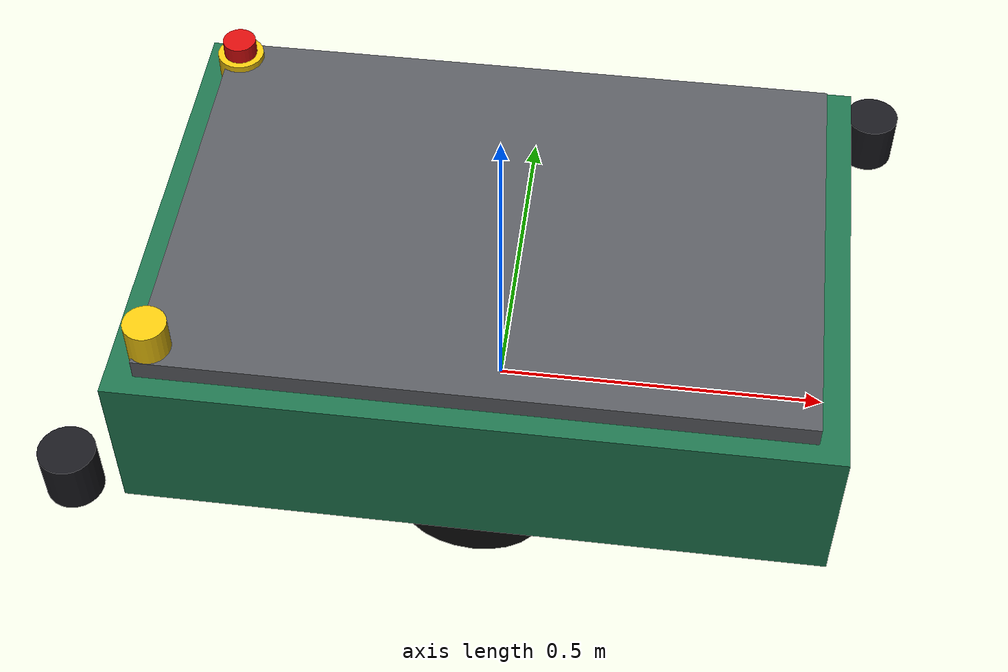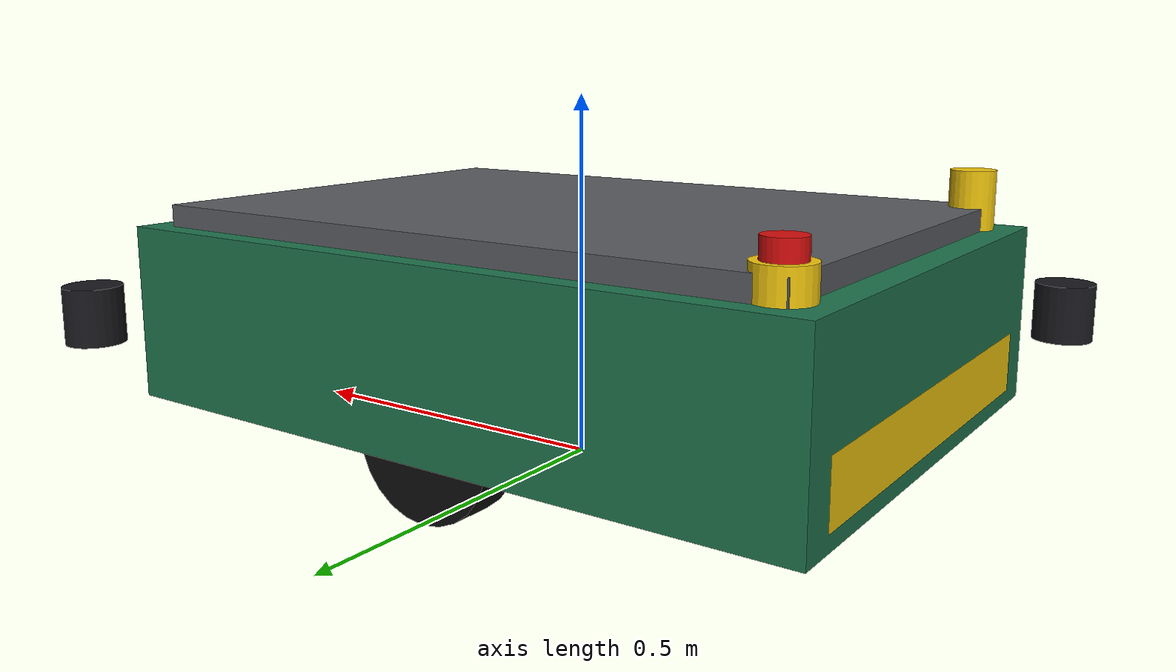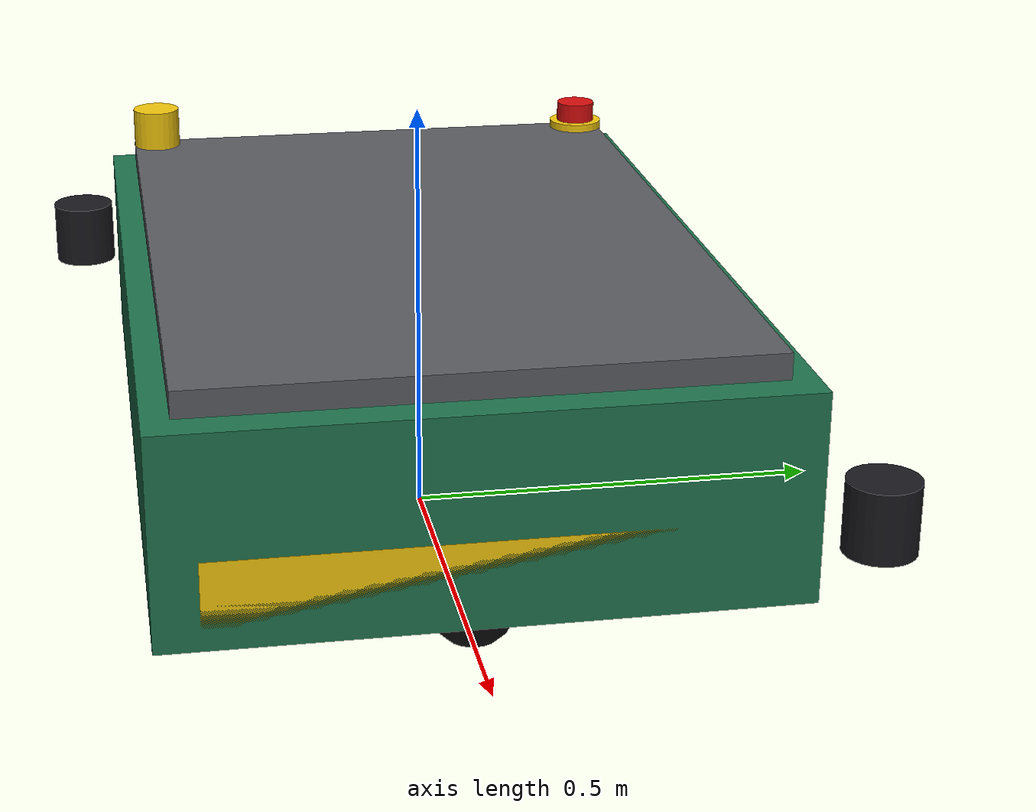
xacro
<?xml version="1.0"?>
<robot xmlns:xacro="http://www.ros.org/wiki/xacro" name="uco_amr">
  <xacro:arg name="camera" default="false"/>
  <xacro:arg name="agv_ns" default="agv"/>
  <xacro:property name="ns" value="$(arg agv_ns)"/>

  <!-- ===================== dimensions (m, kg) ===================== -->
  <xacro:property name="L" value="1.0"/>          <!-- chassis length -->
  <xacro:property name="W" value="0.7"/>          <!-- chassis width -->
  <xacro:property name="chassis_bottom" value="0.08"/>
  <xacro:property name="chassis_top" value="0.32"/>
  <xacro:property name="deck_h" value="0.03"/>    <!-- deck top = 0.35 above ground -->
  <xacro:property name="wheel_r" value="0.10"/>
  <xacro:property name="wheel_w" value="0.06"/>
  <xacro:property name="wheel_sep" value="0.60"/>
  <xacro:property name="caster_r" value="0.05"/>
  <xacro:property name="caster_x" value="0.38"/>
  <xacro:property name="chassis_mass" value="140.0"/>
  <xacro:property name="wheel_mass" value="5.0"/>
  <xacro:property name="lidar_z" value="0.20"/>   <!-- scan plane height above ground -->
  <xacro:property name="lidar_half_fov" value="${radians(132)}"/>

  <xacro:macro name="box_inertia" params="m x y z">
    <inertial><mass value="${m}"/>
      <inertia ixx="${m*(y*y+z*z)/12}" iyy="${m*(x*x+z*z)/12}" izz="${m*(x*x+y*y)/12}" ixy="0" ixz="0" iyz="0"/>
    </inertial>
  </xacro:macro>

  <material name="body_green"><color rgba="0.12 0.45 0.30 1"/></material>
  <material name="deck_grey"><color rgba="0.35 0.36 0.38 1"/></material>
  <material name="black"><color rgba="0.05 0.05 0.05 1"/></material>
  <material name="yellow"><color rgba="0.95 0.78 0.05 1"/></material>
  <material name="red"><color rgba="0.85 0.05 0.05 1"/></material>
  <material name="lidar_black"><color rgba="0.1 0.1 0.12 1"/></material>

  <!-- ===================== chassis ===================== -->
  <link name="base_footprint"/>

  <link name="base_link">
    <visual name="chassis">
      <origin xyz="0 0 ${(chassis_bottom+chassis_top)/2 - wheel_r}"/>
      <geometry><box size="${L} ${W} ${chassis_top-chassis_bottom}"/></geometry>
      <material name="body_green"/>
    </visual>
    <visual name="bumper_front">
      <origin xyz="${L/2 - 0.025} 0 ${chassis_bottom + 0.06 - wheel_r}"/>  <!-- flush, no self-hits -->
      <geometry><box size="0.05 ${W - 0.1} 0.08"/></geometry>
      <material name="yellow"/>
    </visual>
    <visual name="bumper_rear">
      <origin xyz="${-L/2 + 0.025} 0 ${chassis_bottom + 0.06 - wheel_r}"/>
      <geometry><box size="0.05 ${W - 0.1} 0.08"/></geometry>
      <material name="yellow"/>
    </visual>
    <collision>
      <origin xyz="0 0 ${(chassis_bottom+chassis_top)/2 - wheel_r}"/>
      <geometry><box size="${L} ${W} ${chassis_top-chassis_bottom}"/></geometry>
    </collision>
    <xacro:box_inertia m="${chassis_mass}" x="${L}" y="${W}" z="${chassis_top-chassis_bottom}"/>
  </link>
  <joint name="base_footprint_joint" type="fixed">
    <parent link="base_footprint"/><child link="base_link"/>
    <origin xyz="0 0 ${wheel_r}"/>
  </joint>

  <!-- lift deck (payload surface) -->
  <link name="deck_link">
    <visual name="deck">
      <origin xyz="0 0 ${-deck_h/2}"/>
      <geometry><box size="${L - 0.08} ${W - 0.06} ${deck_h}"/></geometry>
      <material name="deck_grey"/>
    </visual>
    <collision>
      <origin xyz="0 0 ${-deck_h/2}"/>
      <geometry><box size="${L - 0.08} ${W - 0.06} ${deck_h}"/></geometry>
    </collision>
    <xacro:box_inertia m="10" x="${L - 0.08}" y="${W - 0.06}" z="${deck_h}"/>
  </link>
  <joint name="deck_joint" type="fixed">
    <parent link="base_link"/><child link="deck_link"/>
    <origin xyz="0 0 ${chassis_top + deck_h - wheel_r}"/>
  </joint>

  <!-- e-stop mushroom button and status beacon (rear corners) -->
  <link name="estop_link">
    <visual name="estop_base"><geometry><cylinder radius="0.035" length="0.04"/></geometry><material name="yellow"/></visual>
    <visual name="estop_button"><origin xyz="0 0 0.03"/><geometry><cylinder radius="0.025" length="0.03"/></geometry><material name="red"/></visual>
  </link>
  <joint name="estop_joint" type="fixed">
    <parent link="base_link"/><child link="estop_link"/>
    <origin xyz="${-L/2 + 0.06} ${W/2 - 0.06} ${chassis_top - wheel_r + 0.02}"/>
  </joint>
  <link name="beacon_link">
    <visual name="beacon"><geometry><cylinder radius="0.03" length="0.08"/></geometry><material name="yellow"/></visual>
  </link>
  <joint name="beacon_joint" type="fixed">
    <parent link="base_link"/><child link="beacon_link"/>
    <origin xyz="${-L/2 + 0.06} ${-W/2 + 0.06} ${chassis_top - wheel_r + 0.04}"/>
  </joint>

  <!-- ===================== drive wheels ===================== -->
  <xacro:macro name="drive_wheel" params="side y">
    <link name="${side}_wheel_link">
      <visual name="tyre">
        <origin rpy="${pi/2} 0 0"/>
        <geometry><cylinder radius="${wheel_r}" length="${wheel_w}"/></geometry>
        <material name="black"/>
      </visual>
      <!-- Sphere collision: a cylinder touches the floor at its rim edges, which shifts the
           effective track width and corrupts odometry in turns (measured ~10 % yaw error). -->
      <collision>
        <geometry><sphere radius="${wheel_r}"/></geometry>
      </collision>
      <inertial><mass value="${wheel_mass}"/>
        <inertia ixx="${wheel_mass*(3*wheel_r*wheel_r+wheel_w*wheel_w)/12}" iyy="${wheel_mass*wheel_r*wheel_r/2}"
                 izz="${wheel_mass*(3*wheel_r*wheel_r+wheel_w*wheel_w)/12}" ixy="0" ixz="0" iyz="0"/>
      </inertial>
    </link>
    <joint name="${side}_wheel_joint" type="continuous">
      <parent link="base_link"/><child link="${side}_wheel_link"/>
      <origin xyz="0 ${y} 0"/>
      <axis xyz="0 1 0"/>
    </joint>
    <gazebo reference="${side}_wheel_link">
      <mu1>1.2</mu1><mu2>1.2</mu2>
    </gazebo>
  </xacro:macro>
  <xacro:drive_wheel side="left" y="${wheel_sep/2}"/>
  <xacro:drive_wheel side="right" y="${-wheel_sep/2}"/>

  <!-- ===================== casters (frictionless spheres) ===================== -->
  <xacro:macro name="caster" params="name x">
    <link name="${name}_caster_link">
      <visual name="ball"><geometry><sphere radius="${caster_r}"/></geometry><material name="black"/></visual>
      <collision><geometry><sphere radius="${caster_r}"/></geometry></collision>
      <inertial><mass value="1.0"/><inertia ixx="0.001" iyy="0.001" izz="0.001" ixy="0" ixz="0" iyz="0"/></inertial>
    </link>
    <joint name="${name}_caster_joint" type="fixed">
      <parent link="base_link"/><child link="${name}_caster_link"/>
      <origin xyz="${x} 0 ${caster_r - wheel_r}"/>
    </joint>
    <gazebo reference="${name}_caster_link">
      <mu1>0.0</mu1><mu2>0.0</mu2>
    </gazebo>
  </xacro:macro>
  <xacro:caster name="front" x="${caster_x}"/>
  <xacro:caster name="rear" x="${-caster_x}"/>

  <!-- ===================== sensors ===================== -->
  <!-- Safety lidar mounted just outside a chassis corner, facing diagonally outwards. -->
  <xacro:macro name="corner_lidar" params="name x y yaw topic">
    <link name="${name}_link">
      <visual name="scanner">
        <geometry><cylinder radius="0.04" length="0.08"/></geometry>
        <material name="lidar_black"/>
      </visual>
      <inertial><mass value="0.5"/><inertia ixx="0.0005" iyy="0.0005" izz="0.0005" ixy="0" ixz="0" iyz="0"/></inertial>
    </link>
    <joint name="${name}_joint" type="fixed">
      <parent link="base_link"/><child link="${name}_link"/>
      <origin xyz="${x} ${y} ${lidar_z - wheel_r}" rpy="0 0 ${yaw}"/>
    </joint>
    <gazebo reference="${name}_link">
      <sensor name="${name}" type="gpu_lidar">
        <gz_frame_id>${name}_link</gz_frame_id>
        <topic>/${ns}/${topic}</topic>
        <update_rate>10</update_rate>
        <always_on>true</always_on>
        <visualize>false</visualize>
        <lidar>
          <scan>
            <horizontal>
              <samples>265</samples>
              <resolution>1</resolution>
              <min_angle>${-lidar_half_fov}</min_angle>
              <max_angle>${lidar_half_fov}</max_angle>
            </horizontal>
            <vertical><samples>1</samples><min_angle>0</min_angle><max_angle>0</max_angle></vertical>
          </scan>
          <range><min>0.08</min><max>12.0</max><resolution>0.01</resolution></range>
          <noise><type>gaussian</type><mean>0.0</mean><stddev>0.01</stddev></noise>
        </lidar>
      </sensor>
    </gazebo>
  </xacro:macro>
  <xacro:corner_lidar name="lidar_front" x="${L/2 + 0.045}" y="${W/2 + 0.045}" yaw="${pi/4}" topic="scan_raw"/>
  <xacro:corner_lidar name="lidar_rear" x="${-L/2 - 0.045}" y="${-W/2 - 0.045}" yaw="${-3*pi/4}" topic="scan_rear_raw"/>

  <link name="imu_link">
    <inertial><mass value="0.1"/><inertia ixx="0.0001" iyy="0.0001" izz="0.0001" ixy="0" ixz="0" iyz="0"/></inertial>
  </link>
  <joint name="imu_joint" type="fixed">
    <parent link="base_link"/><child link="imu_link"/>
    <origin xyz="0 0 0.05"/>
  </joint>
  <gazebo reference="imu_link">
    <sensor name="imu" type="imu">
      <gz_frame_id>imu_link</gz_frame_id>
      <topic>/${ns}/imu</topic>
      <update_rate>50</update_rate>
      <always_on>true</always_on>
      <imu>
        <angular_velocity>
          <x><noise type="gaussian"><mean>0</mean><stddev>0.002</stddev></noise></x>
          <y><noise type="gaussian"><mean>0</mean><stddev>0.002</stddev></noise></y>
          <z><noise type="gaussian"><mean>0</mean><stddev>0.002</stddev></noise></z>
        </angular_velocity>
        <linear_acceleration>
          <x><noise type="gaussian"><mean>0</mean><stddev>0.02</stddev></noise></x>
          <y><noise type="gaussian"><mean>0</mean><stddev>0.02</stddev></noise></y>
          <z><noise type="gaussian"><mean>0</mean><stddev>0.02</stddev></noise></z>
        </linear_acceleration>
      </imu>
    </sensor>
  </gazebo>

  <xacro:if value="$(arg camera)">
    <link name="camera_link">
      <visual name="camera"><geometry><box size="0.04 0.12 0.04"/></geometry><material name="lidar_black"/></visual>
      <inertial><mass value="0.2"/><inertia ixx="0.0002" iyy="0.0002" izz="0.0002" ixy="0" ixz="0" iyz="0"/></inertial>
    </link>
    <joint name="camera_joint" type="fixed">
      <parent link="base_link"/><child link="camera_link"/>
      <origin xyz="${L/2 - 0.03} 0 ${chassis_top - wheel_r + 0.02}"/>
    </joint>
    <link name="camera_optical_frame"/>
    <joint name="camera_optical_joint" type="fixed">
      <parent link="camera_link"/><child link="camera_optical_frame"/>
      <origin rpy="${-pi/2} 0 ${-pi/2}"/>
    </joint>
    <gazebo reference="camera_link">
      <sensor name="depth_camera" type="rgbd_camera">
        <gz_frame_id>camera_optical_frame</gz_frame_id>
        <topic>/${ns}/camera</topic>
        <update_rate>5</update_rate>
        <always_on>true</always_on>
        <camera>
          <horizontal_fov>1.2</horizontal_fov>
          <image><width>320</width><height>240</height><format>R8G8B8</format></image>
          <clip><near>0.2</near><far>8.0</far></clip>
        </camera>
      </sensor>
    </gazebo>
  </xacro:if>

  <!-- ===================== Gazebo systems ===================== -->
  <gazebo>
    <plugin filename="gz-sim-diff-drive-system" name="gz::sim::systems::DiffDrive">
      <left_joint>left_wheel_joint</left_joint>
      <right_joint>right_wheel_joint</right_joint>
      <wheel_separation>${wheel_sep}</wheel_separation>
      <wheel_radius>${wheel_r}</wheel_radius>
      <max_linear_acceleration>0.8</max_linear_acceleration>
      <min_linear_acceleration>-1.2</min_linear_acceleration>
      <max_angular_acceleration>1.5</max_angular_acceleration>
      <min_angular_acceleration>-1.5</min_angular_acceleration>
      <max_linear_velocity>1.0</max_linear_velocity>
      <min_linear_velocity>-0.3</min_linear_velocity>
      <max_angular_velocity>1.2</max_angular_velocity>
      <min_angular_velocity>-1.2</min_angular_velocity>
      <topic>/${ns}/cmd_vel</topic>
      <odom_topic>/${ns}/odom</odom_topic>
      <tf_topic>/${ns}/tf</tf_topic>
      <frame_id>odom</frame_id>
      <child_frame_id>base_footprint</child_frame_id>
      <odom_publish_frequency>30</odom_publish_frequency>
    </plugin>
    <plugin filename="gz-sim-joint-state-publisher-system" name="gz::sim::systems::JointStatePublisher">
      <topic>/${ns}/joint_states</topic>
    </plugin>
    <!-- Ground-truth pose: used only for payload placement and metrics, never for navigation. -->
    <plugin filename="gz-sim-odometry-publisher-system" name="gz::sim::systems::OdometryPublisher">
      <odom_frame>world</odom_frame>
      <robot_base_frame>base_footprint</robot_base_frame>
      <odom_topic>/${ns}/ground_truth</odom_topic>
      <tf_topic>/${ns}/ground_truth_tf</tf_topic>
      <odom_publish_frequency>10</odom_publish_frequency>
      <dimensions>2</dimensions>
    </plugin>
  </gazebo>
</robot>
